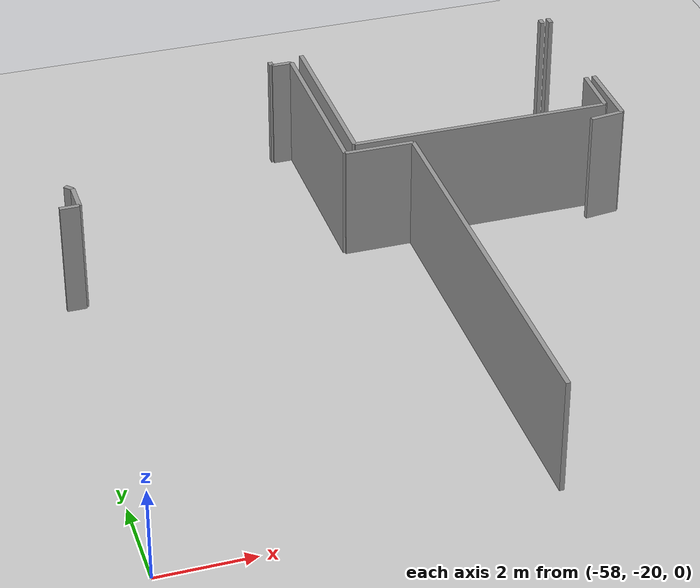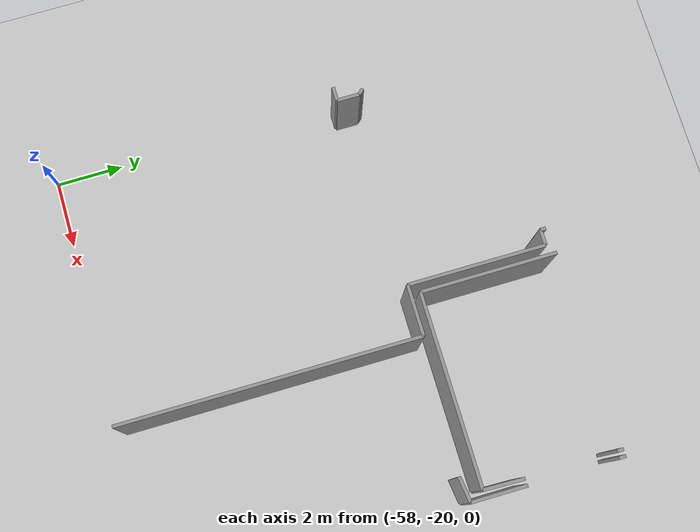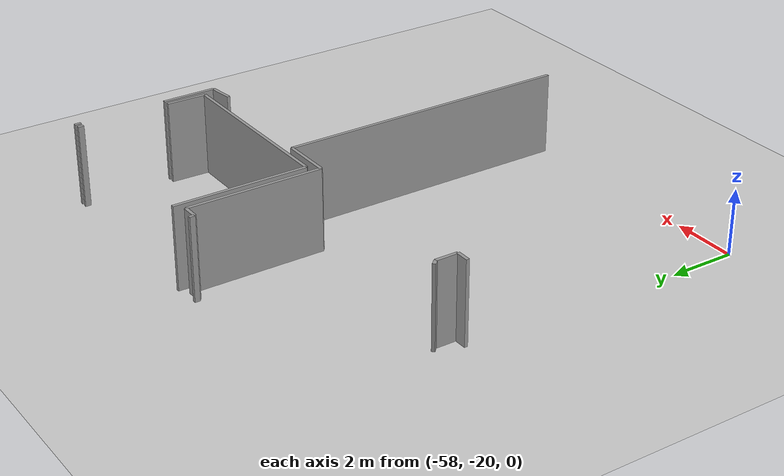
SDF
<sdf version="1.6">
 <world name="default">
  <model name="ground_plane">
   <static>1</static>
   <link name="link">
    <collision name="collision">
     <geometry><plane><normal>0 0 1</normal><size>100 100</size></plane></geometry>
     <surface><friction><ode><mu>100</mu><mu2>50</mu2></ode></friction></surface>
    </collision>
    <visual name="visual">
     <cast_shadows>0</cast_shadows>
     <geometry><plane><normal>0 0 1</normal><size>100 100</size></plane></geometry>
     <material>
      <script><uri>file://media/materials/scripts/gazebo.material</uri><name>Gazebo/Grey</name></script>
     </material>
    </visual>
   </link>
  </model>
  <model name="0510032216_A-40">
   <static>1</static>
   <link name="Wall_8">
    <collision name="Wall_8_Collision">
     <geometry><box><size>5.66185292157 0.1 2.5</size></box></geometry>
     <pose>2.83092646079 0 1.25 0 0 0</pose>
    </collision>
    <visual name="Wall_8_Visual">
     <pose>2.83092646079 0 1.25 0 0 0</pose>
     <geometry><box><size>5.66185292157 0.1 2.5</size></box></geometry>
     <material>
      <script><uri>file://media/materials/scripts/gazebo.material</uri><name>Gazebo/Grey</name></script>
      <ambient>1 1 1 1</ambient>
     </material>
    </visual>
    <pose>23.5984384423 -42.7678547624 0 0 0 3.14159265359</pose>
   </link>
   <link name="Wall_9">
    <collision name="Wall_9_Collision">
     <geometry><box><size>3.99314438061 0.1 2.5</size></box></geometry>
     <pose>1.99657219031 0 1.25 0 0 0</pose>
    </collision>
    <visual name="Wall_9_Visual">
     <pose>1.99657219031 0 1.25 0 0 0</pose>
     <geometry><box><size>3.99314438061 0.1 2.5</size></box></geometry>
     <material>
      <script><uri>file://media/materials/scripts/gazebo.material</uri><name>Gazebo/Grey</name></script>
      <ambient>1 1 1 1</ambient>
     </material>
    </visual>
    <pose>17.9365855207 -42.7678547624 0 0 0 1.57079632679</pose>
   </link>
   <link name="Wall_10">
    <collision name="Wall_10_Collision">
     <geometry><box><size>0.174437426604 0.1 2.5</size></box></geometry>
     <pose>0.0872187133018 0 1.25 0 0 0</pose>
    </collision>
    <visual name="Wall_10_Visual">
     <pose>0.0872187133018 0 1.25 0 0 0</pose>
     <geometry><box><size>0.174437426604 0.1 2.5</size></box></geometry>
     <material>
      <script><uri>file://media/materials/scripts/gazebo.material</uri><name>Gazebo/Grey</name></script>
      <ambient>1 1 1 1</ambient>
     </material>
    </visual>
    <pose>23.6299235091 -38.7747103818 0 0 0 -1.57079632679</pose>
   </link>
   <link name="Wall_11">
    <collision name="Wall_11_Collision">
     <geometry><box><size>1.19329321259 0.1 2.5</size></box></geometry>
     <pose>0.596646606294 0 1.25 0 0 0</pose>
    </collision>
    <visual name="Wall_11_Visual">
     <pose>0.596646606294 0 1.25 0 0 0</pose>
     <geometry><box><size>1.19329321259 0.1 2.5</size></box></geometry>
     <material>
      <script><uri>file://media/materials/scripts/gazebo.material</uri><name>Gazebo/Grey</name></script>
      <ambient>1 1 1 1</ambient>
     </material>
    </visual>
    <pose>23.6299235091 -41.5749769892 0 0 0 -1.59718441044</pose>
   </link>
   <link name="Wall_32">
    <collision name="Wall_32_Collision">
     <geometry><box><size>0.747869631669 0.1 2.5</size></box></geometry>
     <pose>0.373934815834 0 1.25 0 0 0</pose>
    </collision>
    <visual name="Wall_32_Visual">
     <pose>0.373934815834 0 1.25 0 0 0</pose>
     <geometry><box><size>0.747869631669 0.1 2.5</size></box></geometry>
     <material>
      <script><uri>file://media/materials/scripts/gazebo.material</uri><name>Gazebo/Grey</name></script>
      <ambient>1 1 1 1</ambient>
     </material>
    </visual>
    <pose>23.0800774431 -43.2730123465 0 0 0 0.124755053481</pose>
   </link>
   <link name="Wall_33">
    <collision name="Wall_33_Collision">
     <geometry><box><size>1.61284793855 0.1 2.5</size></box></geometry>
     <pose>0.806423969277 0 1.25 0 0 0</pose>
    </collision>
    <visual name="Wall_33_Visual">
     <pose>0.806423969277 0 1.25 0 0 0</pose>
     <geometry><box><size>1.61284793855 0.1 2.5</size></box></geometry>
     <material>
      <script><uri>file://media/materials/scripts/gazebo.material</uri><name>Gazebo/Grey</name></script>
      <ambient>1 1 1 1</ambient>
     </material>
    </visual>
    <pose>23.8221347637 -43.1799536611 0 0 0 1.57079632679</pose>
   </link>
   <link name="Wall_34">
    <collision name="Wall_34_Collision">
     <geometry><box><size>0.196019932079 0.1 2.5</size></box></geometry>
     <pose>0.0980099660393 0 1.25 0 0 0</pose>
    </collision>
    <visual name="Wall_34_Visual">
     <pose>0.0980099660393 0 1.25 0 0 0</pose>
     <geometry><box><size>0.196019932079 0.1 2.5</size></box></geometry>
     <material>
      <script><uri>file://media/materials/scripts/gazebo.material</uri><name>Gazebo/Grey</name></script>
      <ambient>1 1 1 1</ambient>
     </material>
    </visual>
    <pose>23.8221347637 -38.9652712096 0 0 0 1.57079632679</pose>
   </link>
   <link name="Wall_48">
    <collision name="Wall_48_Collision">
     <geometry><box><size>0.413749325547 0.1 2.5</size></box></geometry>
     <pose>0.206874662773 0 1.25 0 0 0</pose>
    </collision>
    <visual name="Wall_48_Visual">
     <pose>0.206874662773 0 1.25 0 0 0</pose>
     <geometry><box><size>0.413749325547 0.1 2.5</size></box></geometry>
     <material>
      <script><uri>file://media/materials/scripts/gazebo.material</uri><name>Gazebo/Grey</name></script>
      <ambient>1 1 1 1</ambient>
     </material>
    </visual>
    <pose>11.50372933 -43.4075856159 0 0 0 0.0</pose>
   </link>
   <link name="Wall_49">
    <collision name="Wall_49_Collision">
     <geometry><box><size>0.660551623449 0.1 2.5</size></box></geometry>
     <pose>0.330275811724 0 1.25 0 0 0</pose>
    </collision>
    <visual name="Wall_49_Visual">
     <pose>0.330275811724 0 1.25 0 0 0</pose>
     <geometry><box><size>0.660551623449 0.1 2.5</size></box></geometry>
     <material>
      <script><uri>file://media/materials/scripts/gazebo.material</uri><name>Gazebo/Grey</name></script>
      <ambient>1 1 1 1</ambient>
     </material>
    </visual>
    <pose>11.9174786555 -43.4075856159 0 0 0 1.57079632679</pose>
   </link>
   <link name="Wall_50">
    <collision name="Wall_50_Collision">
     <geometry><box><size>0.189935425374 0.1 2.5</size></box></geometry>
     <pose>0.0949677126869 0 1.25 0 0 0</pose>
    </collision>
    <visual name="Wall_50_Visual">
     <pose>0.0949677126869 0 1.25 0 0 0</pose>
     <geometry><box><size>0.189935425374 0.1 2.5</size></box></geometry>
     <material>
      <script><uri>file://media/materials/scripts/gazebo.material</uri><name>Gazebo/Grey</name></script>
      <ambient>1 1 1 1</ambient>
     </material>
    </visual>
    <pose>11.9174786555 -42.7470339924 0 0 0 2.32925065762</pose>
   </link>
   <link name="Wall_51">
    <collision name="Wall_51_Collision">
     <geometry><box><size>0.157425334053 0.1 2.5</size></box></geometry>
     <pose>0.0787126670264 0 1.25 0 0 0</pose>
    </collision>
    <visual name="Wall_51_Visual">
     <pose>0.0787126670264 0 1.25 0 0 0</pose>
     <geometry><box><size>0.157425334053 0.1 2.5</size></box></geometry>
     <material>
      <script><uri>file://media/materials/scripts/gazebo.material</uri><name>Gazebo/Grey</name></script>
      <ambient>1 1 1 1</ambient>
     </material>
    </visual>
    <pose>17.1856412861 -38.8558352112 0 0 0 -1.57079632679</pose>
   </link>
   <link name="Wall_52">
    <collision name="Wall_52_Collision">
     <geometry><box><size>0.458183895642 0.1 2.5</size></box></geometry>
     <pose>0.229091947821 0 1.25 0 0 0</pose>
    </collision>
    <visual name="Wall_52_Visual">
     <pose>0.229091947821 0 1.25 0 0 0</pose>
     <geometry><box><size>0.458183895642 0.1 2.5</size></box></geometry>
     <material>
      <script><uri>file://media/materials/scripts/gazebo.material</uri><name>Gazebo/Grey</name></script>
      <ambient>1 1 1 1</ambient>
     </material>
    </visual>
    <pose>17.1856412861 -39.0132605453 0 0 0 0.0</pose>
   </link>
   <link name="Wall_53">
    <collision name="Wall_53_Collision">
     <geometry><box><size>4.03872155394 0.1 2.5</size></box></geometry>
     <pose>2.01936077697 0 1.25 0 0 0</pose>
    </collision>
    <visual name="Wall_53_Visual">
     <pose>2.01936077697 0 1.25 0 0 0</pose>
     <geometry><box><size>4.03872155394 0.1 2.5</size></box></geometry>
     <material>
      <script><uri>file://media/materials/scripts/gazebo.material</uri><name>Gazebo/Grey</name></script>
      <ambient>1 1 1 1</ambient>
     </material>
    </visual>
    <pose>17.6438251817 -39.0132605453 0 0 0 -1.57079632679</pose>
   </link>
   <link name="Wall_54">
    <collision name="Wall_54_Collision">
     <geometry><box><size>1.49617545307 0.1 2.5</size></box></geometry>
     <pose>0.748087726537 0 1.25 0 0 0</pose>
    </collision>
    <visual name="Wall_54_Visual">
     <pose>0.748087726537 0 1.25 0 0 0</pose>
     <geometry><box><size>1.49617545307 0.1 2.5</size></box></geometry>
     <material>
      <script><uri>file://media/materials/scripts/gazebo.material</uri><name>Gazebo/Grey</name></script>
      <ambient>1 1 1 1</ambient>
     </material>
    </visual>
    <pose>17.6438251817 -43.0519820992 0 0 0 0.0</pose>
   </link>
   <link name="Wall_55">
    <collision name="Wall_55_Collision">
     <geometry><box><size>8.86901323515 0.1 2.5</size></box></geometry>
     <pose>4.43450661758 0 1.25 0 0 0</pose>
    </collision>
    <visual name="Wall_55_Visual">
     <pose>4.43450661758 0 1.25 0 0 0</pose>
     <geometry><box><size>8.86901323515 0.1 2.5</size></box></geometry>
     <material>
      <script><uri>file://media/materials/scripts/gazebo.material</uri><name>Gazebo/Grey</name></script>
      <ambient>1 1 1 1</ambient>
     </material>
    </visual>
    <pose>19.1400006348 -43.0519820992 0 0 0 -1.57079632679</pose>
   </link>
   <pose>-69.25 32.0461944965 0 0 0 0</pose>
  </model>
 </world>
</sdf>
